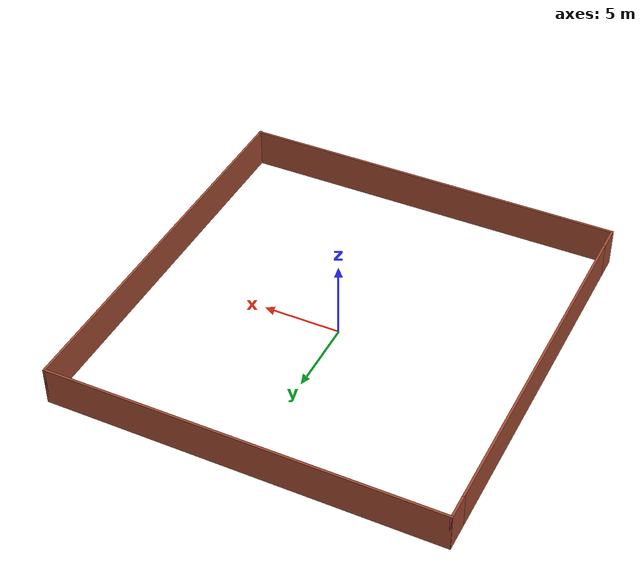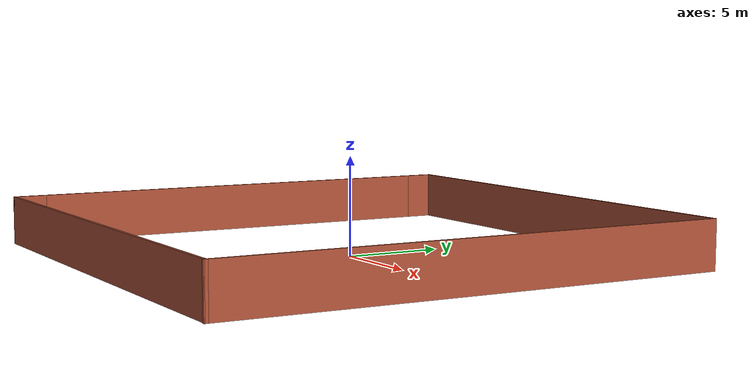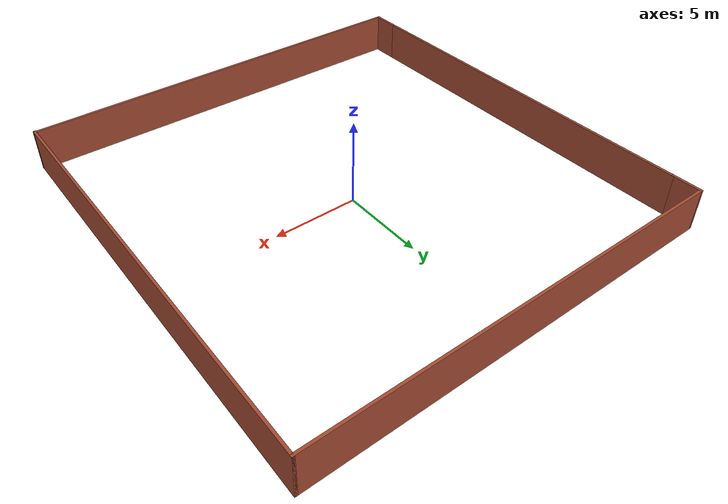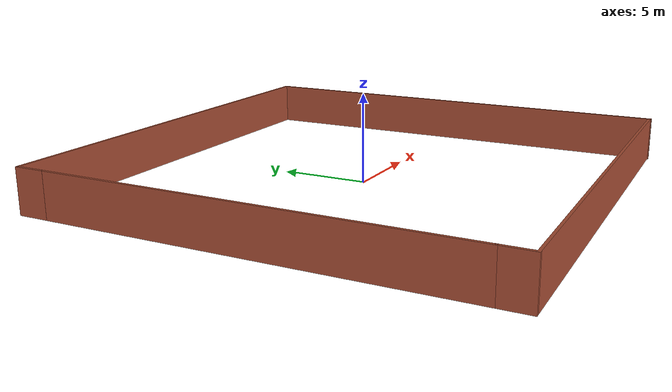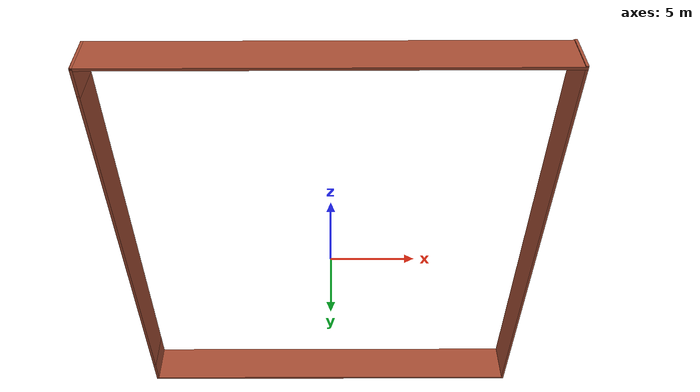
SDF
<?xml version='1.0'?>
<sdf version='1.7'>
  <model name='boundry'>
    <pose>-0.083913 -0.398215 0 0 -0 0</pose>
    <link name='Wall_10'>
      <collision name='Wall_10_Collision'>
        <geometry>
          <box>
            <size>25 0.15 2.5</size>
          </box>
        </geometry>
        <pose>0 0 1.25 0 -0 0</pose>
      </collision>
      <visual name='Wall_10_Visual'>
        <pose>0 0 1.25 0 -0 0</pose>
        <geometry>
          <box>
            <size>25 0.15 2.5</size>
          </box>
        </geometry>
        <material>
          <script>
            <uri>file://media/materials/scripts/gazebo.material</uri>
            <name>Gazebo/Bricks</name>
          </script>
          <ambient>1 1 1 1</ambient>
        </material>
        <meta>
          <layer>0</layer>
        </meta>
      </visual>
      <pose>0 12.925 0 0 -0 0</pose>
    </link>
    <link name='Wall_11'>
      <collision name='Wall_11_Collision'>
        <geometry>
          <box>
            <size>26 0.15 2.5</size>
          </box>
        </geometry>
        <pose>0 0 1.25 0 -0 0</pose>
      </collision>
      <visual name='Wall_11_Visual'>
        <pose>0 0 1.25 0 -0 0</pose>
        <geometry>
          <box>
            <size>26 0.15 2.5</size>
          </box>
        </geometry>
        <material>
          <script>
            <uri>file://media/materials/scripts/gazebo.material</uri>
            <name>Gazebo/Bricks</name>
          </script>
          <ambient>1 1 1 1</ambient>
        </material>
        <meta>
          <layer>0</layer>
        </meta>
      </visual>
      <pose>12.425 0 0 0 -0 -1.5708</pose>
    </link>
    <link name='Wall_5'>
      <collision name='Wall_5_Collision'>
        <geometry>
          <box>
            <size>22.75 0.15 2.5</size>
          </box>
        </geometry>
        <pose>0 0 1.25 0 -0 0</pose>
      </collision>
      <visual name='Wall_5_Visual'>
        <pose>0 0 1.25 0 -0 0</pose>
        <geometry>
          <box>
            <size>22.75 0.15 2.5</size>
          </box>
        </geometry>
        <material>
          <script>
            <uri>file://media/materials/scripts/gazebo.material</uri>
            <name>Gazebo/Bricks</name>
          </script>
          <ambient>1 1 1 1</ambient>
        </material>
        <meta>
          <layer>0</layer>
        </meta>
      </visual>
      <pose>-12.425 0.025 0 0 -0 -1.5708</pose>
    </link>
    <link name='Wall_6'>
      <collision name='Wall_6_Collision'>
        <geometry>
          <box>
            <size>1.75 0.15 2.5</size>
          </box>
        </geometry>
        <pose>0 0 1.25 0 -0 0</pose>
      </collision>
      <visual name='Wall_6_Visual'>
        <pose>0 0 1.25 0 -0 0</pose>
        <geometry>
          <box>
            <size>1.75 0.15 2.5</size>
          </box>
        </geometry>
        <material>
          <script>
            <uri>file://media/materials/scripts/gazebo.material</uri>
            <name>Gazebo/Bricks</name>
          </script>
          <ambient>1 1 1 1</ambient>
        </material>
        <meta>
          <layer>0</layer>
        </meta>
      </visual>
      <pose>-12.425 -12.075 0 0 -0 -1.5708</pose>
    </link>
    <link name='Wall_7'>
      <collision name='Wall_7_Collision'>
        <geometry>
          <box>
            <size>25 0.15 2.5</size>
          </box>
        </geometry>
        <pose>0 0 1.25 0 -0 0</pose>
      </collision>
      <visual name='Wall_7_Visual'>
        <pose>0 0 1.25 0 -0 0</pose>
        <geometry>
          <box>
            <size>25 0.15 2.5</size>
          </box>
        </geometry>
        <material>
          <script>
            <uri>file://media/materials/scripts/gazebo.material</uri>
            <name>Gazebo/Bricks</name>
          </script>
          <ambient>1 1 1 1</ambient>
        </material>
        <meta>
          <layer>0</layer>
        </meta>
      </visual>
      <pose>0 -12.875 0 0 -0 0</pose>
    </link>
    <link name='Wall_9'>
      <collision name='Wall_9_Collision'>
        <geometry>
          <box>
            <size>1.75 0.15 2.5</size>
          </box>
        </geometry>
        <pose>0 0 1.25 0 -0 0</pose>
      </collision>
      <visual name='Wall_9_Visual'>
        <pose>0 0 1.25 0 -0 0</pose>
        <geometry>
          <box>
            <size>1.75 0.15 2.5</size>
          </box>
        </geometry>
        <material>
          <script>
            <uri>file://media/materials/scripts/gazebo.material</uri>
            <name>Gazebo/Bricks</name>
          </script>
          <ambient>1 1 1 1</ambient>
        </material>
        <meta>
          <layer>0</layer>
        </meta>
      </visual>
      <pose>-12.425 12.125 0 0 -0 1.5708</pose>
    </link>
    <static>1</static>
  </model>
</sdf>
